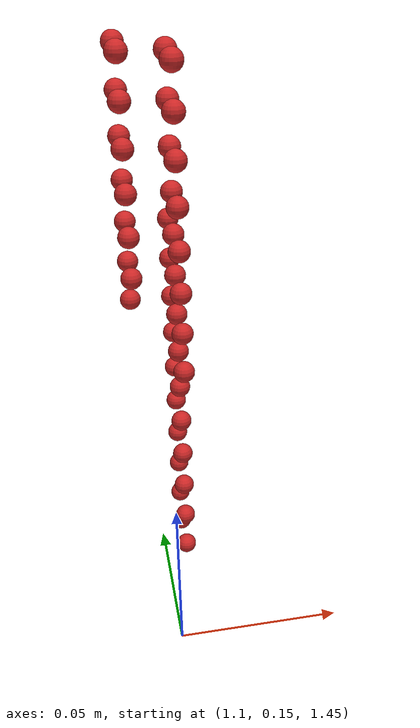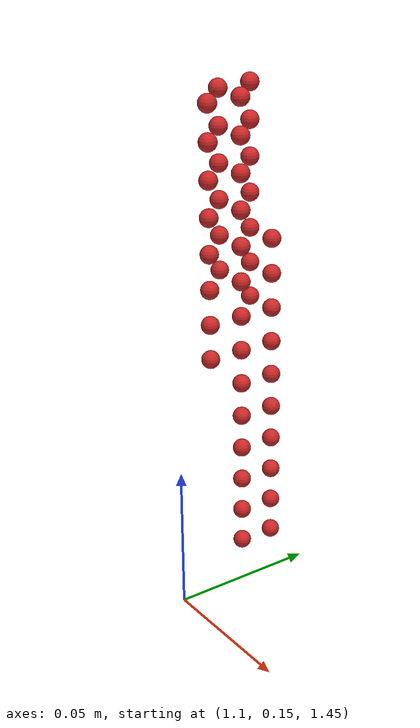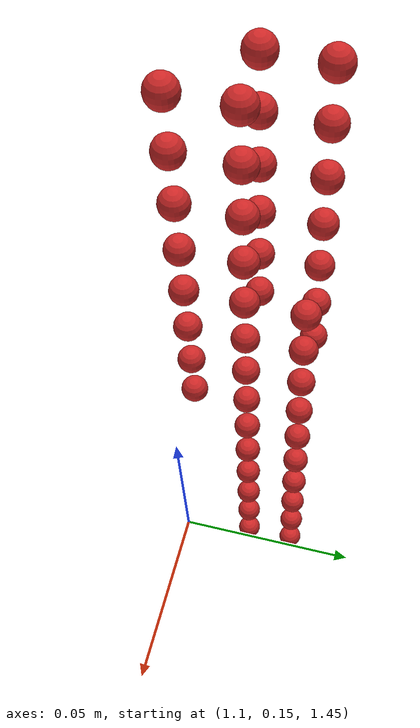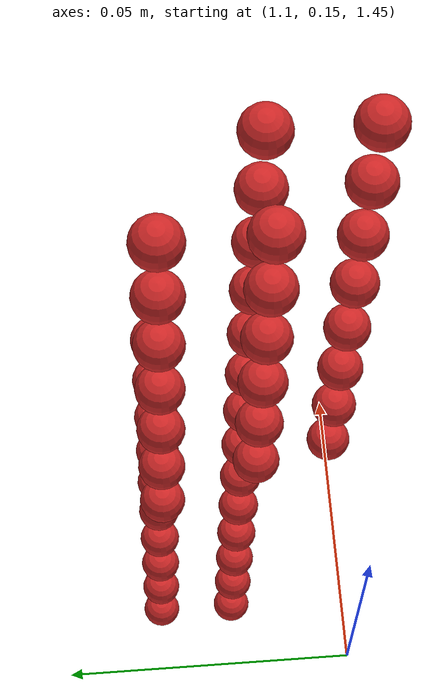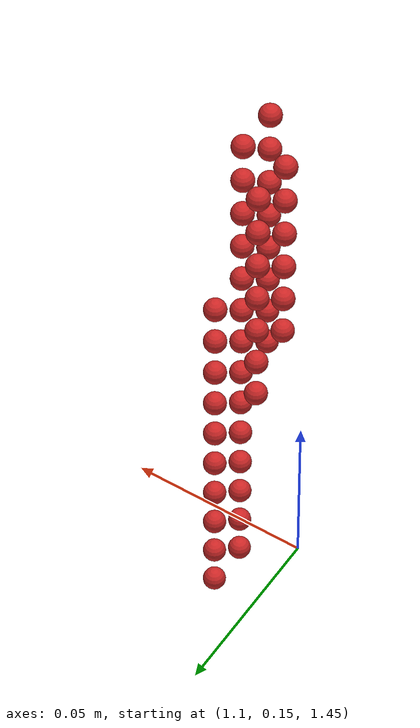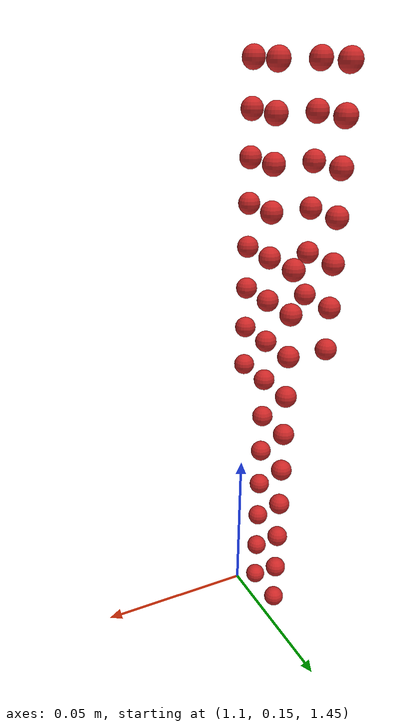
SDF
<sdf version="1.4">
 <world name="default">
  <model name="ground_plane">
   <static>1</static>
   <link name="link">
    <collision name="collision">
     <geometry><plane><normal>0 0 1</normal><size>100 100</size></plane></geometry>
     <surface><friction><ode><mu>100</mu><mu2>50</mu2></ode></friction></surface>
    </collision>
    <visual name="visual">
     <cast_shadows>0</cast_shadows>
     <geometry><plane><normal>0 0 1</normal><size>100 100</size></plane></geometry>
     <material>
      <script><uri>file://media/materials/scripts/gazebo.material</uri><name>Gazebo/Grey</name></script>
     </material>
    </visual>
    <velocity_decay><linear>0</linear><angular>0</angular></velocity_decay>
   </link>
  </model>
  <model name="sphere10">
   <pose>0.558545 0.091517 0.734885 0 0 0</pose>
   <link name="link">
    <pose>0.546545 0.079517 0.734885 0 0 0</pose>
    <inertial>
     <mass>0.001</mass>
     <inertia>
      <ixx>0.004</ixx>
      <ixy>0.000000</ixy>
      <ixz>0.000000</ixz>
      <iyy>0.004</iyy>
      <iyz>0.000000</iyz>
      <izz>0.004</izz>
     </inertia>
    </inertial>
    <collision name="collision">
     <surface>
      <contact><ode><kp>10000000000.000000</kp><kd>1</kd></ode></contact>
      <friction><ode><mu>0.01</mu><mu2>0.01</mu2></ode></friction>
     </surface>
     <geometry><sphere><radius>0.003</radius></sphere></geometry>
    </collision>
    <visual name="visual">
     <geometry><sphere><radius>0.003</radius></sphere></geometry>
     <material>
      <script><uri>file://media/materials/scripts/gazebo.material</uri><name>Gazebo/Red</name></script>
     </material>
    </visual>
   </link>
  </model>
  <model name="sphere14">
   <pose>0.558545 0.097517 0.734885 0 0 0</pose>
   <link name="link">
    <pose>0.546545 0.085517 0.734885 0 0 0</pose>
    <inertial>
     <mass>0.001</mass>
     <inertia>
      <ixx>0.004</ixx>
      <ixy>0.000000</ixy>
      <ixz>0.000000</ixz>
      <iyy>0.004</iyy>
      <iyz>0.000000</iyz>
      <izz>0.004</izz>
     </inertia>
    </inertial>
    <collision name="collision">
     <surface>
      <contact><ode><kp>10000000000.000000</kp><kd>1</kd></ode></contact>
      <friction><ode><mu>0.01</mu><mu2>0.01</mu2></ode></friction>
     </surface>
     <geometry><sphere><radius>0.003</radius></sphere></geometry>
    </collision>
    <visual name="visual">
     <geometry><sphere><radius>0.003</radius></sphere></geometry>
     <material>
      <script><uri>file://media/materials/scripts/gazebo.material</uri><name>Gazebo/Red</name></script>
     </material>
    </visual>
   </link>
  </model>
  <model name="sphere26">
   <pose>0.558545 0.091517 0.740885 0 0 0</pose>
   <link name="link">
    <pose>0.546545 0.079517 0.740885 0 0 0</pose>
    <inertial>
     <mass>0.001</mass>
     <inertia>
      <ixx>0.004</ixx>
      <ixy>0.000000</ixy>
      <ixz>0.000000</ixz>
      <iyy>0.004</iyy>
      <iyz>0.000000</iyz>
      <izz>0.004</izz>
     </inertia>
    </inertial>
    <collision name="collision">
     <surface>
      <contact><ode><kp>10000000000.000000</kp><kd>1</kd></ode></contact>
      <friction><ode><mu>0.01</mu><mu2>0.01</mu2></ode></friction>
     </surface>
     <geometry><sphere><radius>0.003</radius></sphere></geometry>
    </collision>
    <visual name="visual">
     <geometry><sphere><radius>0.003</radius></sphere></geometry>
     <material>
      <script><uri>file://media/materials/scripts/gazebo.material</uri><name>Gazebo/Red</name></script>
     </material>
    </visual>
   </link>
  </model>
  <model name="sphere30">
   <pose>0.558545 0.097517 0.740885 0 0 0</pose>
   <link name="link">
    <pose>0.546545 0.085517 0.740885 0 0 0</pose>
    <inertial>
     <mass>0.001</mass>
     <inertia>
      <ixx>0.004</ixx>
      <ixy>0.000000</ixy>
      <ixz>0.000000</ixz>
      <iyy>0.004</iyy>
      <iyz>0.000000</iyz>
      <izz>0.004</izz>
     </inertia>
    </inertial>
    <collision name="collision">
     <surface>
      <contact><ode><kp>10000000000.000000</kp><kd>1</kd></ode></contact>
      <friction><ode><mu>0.01</mu><mu2>0.01</mu2></ode></friction>
     </surface>
     <geometry><sphere><radius>0.003</radius></sphere></geometry>
    </collision>
    <visual name="visual">
     <geometry><sphere><radius>0.003</radius></sphere></geometry>
     <material>
      <script><uri>file://media/materials/scripts/gazebo.material</uri><name>Gazebo/Red</name></script>
     </material>
    </visual>
   </link>
  </model>
  <model name="sphere42">
   <pose>0.558545 0.091517 0.746885 0 0 0</pose>
   <link name="link">
    <pose>0.546545 0.079517 0.746885 0 0 0</pose>
    <inertial>
     <mass>0.001</mass>
     <inertia>
      <ixx>0.004</ixx>
      <ixy>0.000000</ixy>
      <ixz>0.000000</ixz>
      <iyy>0.004</iyy>
      <iyz>0.000000</iyz>
      <izz>0.004</izz>
     </inertia>
    </inertial>
    <collision name="collision">
     <surface>
      <contact><ode><kp>10000000000.000000</kp><kd>1</kd></ode></contact>
      <friction><ode><mu>0.01</mu><mu2>0.01</mu2></ode></friction>
     </surface>
     <geometry><sphere><radius>0.003</radius></sphere></geometry>
    </collision>
    <visual name="visual">
     <geometry><sphere><radius>0.003</radius></sphere></geometry>
     <material>
      <script><uri>file://media/materials/scripts/gazebo.material</uri><name>Gazebo/Red</name></script>
     </material>
    </visual>
   </link>
  </model>
  <model name="sphere46">
   <pose>0.558545 0.097517 0.746885 0 0 0</pose>
   <link name="link">
    <pose>0.546545 0.085517 0.746885 0 0 0</pose>
    <inertial>
     <mass>0.001</mass>
     <inertia>
      <ixx>0.004</ixx>
      <ixy>0.000000</ixy>
      <ixz>0.000000</ixz>
      <iyy>0.004</iyy>
      <iyz>0.000000</iyz>
      <izz>0.004</izz>
     </inertia>
    </inertial>
    <collision name="collision">
     <surface>
      <contact><ode><kp>10000000000.000000</kp><kd>1</kd></ode></contact>
      <friction><ode><mu>0.01</mu><mu2>0.01</mu2></ode></friction>
     </surface>
     <geometry><sphere><radius>0.003</radius></sphere></geometry>
    </collision>
    <visual name="visual">
     <geometry><sphere><radius>0.003</radius></sphere></geometry>
     <material>
      <script><uri>file://media/materials/scripts/gazebo.material</uri><name>Gazebo/Red</name></script>
     </material>
    </visual>
   </link>
  </model>
  <model name="sphere58">
   <pose>0.558545 0.091517 0.752885 0 0 0</pose>
   <link name="link">
    <pose>0.546545 0.079517 0.752885 0 0 0</pose>
    <inertial>
     <mass>0.001</mass>
     <inertia>
      <ixx>0.004</ixx>
      <ixy>0.000000</ixy>
      <ixz>0.000000</ixz>
      <iyy>0.004</iyy>
      <iyz>0.000000</iyz>
      <izz>0.004</izz>
     </inertia>
    </inertial>
    <collision name="collision">
     <surface>
      <contact><ode><kp>10000000000.000000</kp><kd>1</kd></ode></contact>
      <friction><ode><mu>0.01</mu><mu2>0.01</mu2></ode></friction>
     </surface>
     <geometry><sphere><radius>0.003</radius></sphere></geometry>
    </collision>
    <visual name="visual">
     <geometry><sphere><radius>0.003</radius></sphere></geometry>
     <material>
      <script><uri>file://media/materials/scripts/gazebo.material</uri><name>Gazebo/Red</name></script>
     </material>
    </visual>
   </link>
  </model>
  <model name="sphere62">
   <pose>0.558545 0.097517 0.752885 0 0 0</pose>
   <link name="link">
    <pose>0.546545 0.085517 0.752885 0 0 0</pose>
    <inertial>
     <mass>0.001</mass>
     <inertia>
      <ixx>0.004</ixx>
      <ixy>0.000000</ixy>
      <ixz>0.000000</ixz>
      <iyy>0.004</iyy>
      <iyz>0.000000</iyz>
      <izz>0.004</izz>
     </inertia>
    </inertial>
    <collision name="collision">
     <surface>
      <contact><ode><kp>10000000000.000000</kp><kd>1</kd></ode></contact>
      <friction><ode><mu>0.01</mu><mu2>0.01</mu2></ode></friction>
     </surface>
     <geometry><sphere><radius>0.003</radius></sphere></geometry>
    </collision>
    <visual name="visual">
     <geometry><sphere><radius>0.003</radius></sphere></geometry>
     <material>
      <script><uri>file://media/materials/scripts/gazebo.material</uri><name>Gazebo/Red</name></script>
     </material>
    </visual>
   </link>
  </model>
  <model name="sphere74">
   <pose>0.558545 0.091517 0.758885 0 0 0</pose>
   <link name="link">
    <pose>0.546545 0.079517 0.758885 0 0 0</pose>
    <inertial>
     <mass>0.001</mass>
     <inertia>
      <ixx>0.004</ixx>
      <ixy>0.000000</ixy>
      <ixz>0.000000</ixz>
      <iyy>0.004</iyy>
      <iyz>0.000000</iyz>
      <izz>0.004</izz>
     </inertia>
    </inertial>
    <collision name="collision">
     <surface>
      <contact><ode><kp>10000000000.000000</kp><kd>1</kd></ode></contact>
      <friction><ode><mu>0.01</mu><mu2>0.01</mu2></ode></friction>
     </surface>
     <geometry><sphere><radius>0.003</radius></sphere></geometry>
    </collision>
    <visual name="visual">
     <geometry><sphere><radius>0.003</radius></sphere></geometry>
     <material>
      <script><uri>file://media/materials/scripts/gazebo.material</uri><name>Gazebo/Red</name></script>
     </material>
    </visual>
   </link>
  </model>
  <model name="sphere78">
   <pose>0.558545 0.097517 0.758885 0 0 0</pose>
   <link name="link">
    <pose>0.546545 0.085517 0.758885 0 0 0</pose>
    <inertial>
     <mass>0.001</mass>
     <inertia>
      <ixx>0.004</ixx>
      <ixy>0.000000</ixy>
      <ixz>0.000000</ixz>
      <iyy>0.004</iyy>
      <iyz>0.000000</iyz>
      <izz>0.004</izz>
     </inertia>
    </inertial>
    <collision name="collision">
     <surface>
      <contact><ode><kp>10000000000.000000</kp><kd>1</kd></ode></contact>
      <friction><ode><mu>0.01</mu><mu2>0.01</mu2></ode></friction>
     </surface>
     <geometry><sphere><radius>0.003</radius></sphere></geometry>
    </collision>
    <visual name="visual">
     <geometry><sphere><radius>0.003</radius></sphere></geometry>
     <material>
      <script><uri>file://media/materials/scripts/gazebo.material</uri><name>Gazebo/Red</name></script>
     </material>
    </visual>
   </link>
  </model>
  <model name="sphere90">
   <pose>0.558545 0.091517 0.764885 0 0 0</pose>
   <link name="link">
    <pose>0.546545 0.079517 0.764885 0 0 0</pose>
    <inertial>
     <mass>0.001</mass>
     <inertia>
      <ixx>0.004</ixx>
      <ixy>0.000000</ixy>
      <ixz>0.000000</ixz>
      <iyy>0.004</iyy>
      <iyz>0.000000</iyz>
      <izz>0.004</izz>
     </inertia>
    </inertial>
    <collision name="collision">
     <surface>
      <contact><ode><kp>10000000000.000000</kp><kd>1</kd></ode></contact>
      <friction><ode><mu>0.01</mu><mu2>0.01</mu2></ode></friction>
     </surface>
     <geometry><sphere><radius>0.003</radius></sphere></geometry>
    </collision>
    <visual name="visual">
     <geometry><sphere><radius>0.003</radius></sphere></geometry>
     <material>
      <script><uri>file://media/materials/scripts/gazebo.material</uri><name>Gazebo/Red</name></script>
     </material>
    </visual>
   </link>
  </model>
  <model name="sphere94">
   <pose>0.558545 0.097517 0.764885 0 0 0</pose>
   <link name="link">
    <pose>0.546545 0.085517 0.764885 0 0 0</pose>
    <inertial>
     <mass>0.001</mass>
     <inertia>
      <ixx>0.004</ixx>
      <ixy>0.000000</ixy>
      <ixz>0.000000</ixz>
      <iyy>0.004</iyy>
      <iyz>0.000000</iyz>
      <izz>0.004</izz>
     </inertia>
    </inertial>
    <collision name="collision">
     <surface>
      <contact><ode><kp>10000000000.000000</kp><kd>1</kd></ode></contact>
      <friction><ode><mu>0.01</mu><mu2>0.01</mu2></ode></friction>
     </surface>
     <geometry><sphere><radius>0.003</radius></sphere></geometry>
    </collision>
    <visual name="visual">
     <geometry><sphere><radius>0.003</radius></sphere></geometry>
     <material>
      <script><uri>file://media/materials/scripts/gazebo.material</uri><name>Gazebo/Red</name></script>
     </material>
    </visual>
   </link>
  </model>
  <model name="sphere102">
   <pose>0.558545 0.085517 0.770885 0 0 0</pose>
   <link name="link">
    <pose>0.546545 0.073517 0.770885 0 0 0</pose>
    <inertial>
     <mass>0.001</mass>
     <inertia>
      <ixx>0.004</ixx>
      <ixy>0.000000</ixy>
      <ixz>0.000000</ixz>
      <iyy>0.004</iyy>
      <iyz>0.000000</iyz>
      <izz>0.004</izz>
     </inertia>
    </inertial>
    <collision name="collision">
     <surface>
      <contact><ode><kp>10000000000.000000</kp><kd>1</kd></ode></contact>
      <friction><ode><mu>0.01</mu><mu2>0.01</mu2></ode></friction>
     </surface>
     <geometry><sphere><radius>0.003</radius></sphere></geometry>
    </collision>
    <visual name="visual">
     <geometry><sphere><radius>0.003</radius></sphere></geometry>
     <material>
      <script><uri>file://media/materials/scripts/gazebo.material</uri><name>Gazebo/Red</name></script>
     </material>
    </visual>
   </link>
  </model>
  <model name="sphere106">
   <pose>0.558545 0.091517 0.770885 0 0 0</pose>
   <link name="link">
    <pose>0.546545 0.079517 0.770885 0 0 0</pose>
    <inertial>
     <mass>0.001</mass>
     <inertia>
      <ixx>0.004</ixx>
      <ixy>0.000000</ixy>
      <ixz>0.000000</ixz>
      <iyy>0.004</iyy>
      <iyz>0.000000</iyz>
      <izz>0.004</izz>
     </inertia>
    </inertial>
    <collision name="collision">
     <surface>
      <contact><ode><kp>10000000000.000000</kp><kd>1</kd></ode></contact>
      <friction><ode><mu>0.01</mu><mu2>0.01</mu2></ode></friction>
     </surface>
     <geometry><sphere><radius>0.003</radius></sphere></geometry>
    </collision>
    <visual name="visual">
     <geometry><sphere><radius>0.003</radius></sphere></geometry>
     <material>
      <script><uri>file://media/materials/scripts/gazebo.material</uri><name>Gazebo/Red</name></script>
     </material>
    </visual>
   </link>
  </model>
  <model name="sphere110">
   <pose>0.558545 0.097517 0.770885 0 0 0</pose>
   <link name="link">
    <pose>0.546545 0.085517 0.770885 0 0 0</pose>
    <inertial>
     <mass>0.001</mass>
     <inertia>
      <ixx>0.004</ixx>
      <ixy>0.000000</ixy>
      <ixz>0.000000</ixz>
      <iyy>0.004</iyy>
      <iyz>0.000000</iyz>
      <izz>0.004</izz>
     </inertia>
    </inertial>
    <collision name="collision">
     <surface>
      <contact><ode><kp>10000000000.000000</kp><kd>1</kd></ode></contact>
      <friction><ode><mu>0.01</mu><mu2>0.01</mu2></ode></friction>
     </surface>
     <geometry><sphere><radius>0.003</radius></sphere></geometry>
    </collision>
    <visual name="visual">
     <geometry><sphere><radius>0.003</radius></sphere></geometry>
     <material>
      <script><uri>file://media/materials/scripts/gazebo.material</uri><name>Gazebo/Red</name></script>
     </material>
    </visual>
   </link>
  </model>
  <model name="sphere118">
   <pose>0.558545 0.085517 0.776885 0 0 0</pose>
   <link name="link">
    <pose>0.546545 0.073517 0.776885 0 0 0</pose>
    <inertial>
     <mass>0.001</mass>
     <inertia>
      <ixx>0.004</ixx>
      <ixy>0.000000</ixy>
      <ixz>0.000000</ixz>
      <iyy>0.004</iyy>
      <iyz>0.000000</iyz>
      <izz>0.004</izz>
     </inertia>
    </inertial>
    <collision name="collision">
     <surface>
      <contact><ode><kp>10000000000.000000</kp><kd>1</kd></ode></contact>
      <friction><ode><mu>0.01</mu><mu2>0.01</mu2></ode></friction>
     </surface>
     <geometry><sphere><radius>0.003</radius></sphere></geometry>
    </collision>
    <visual name="visual">
     <geometry><sphere><radius>0.003</radius></sphere></geometry>
     <material>
      <script><uri>file://media/materials/scripts/gazebo.material</uri><name>Gazebo/Red</name></script>
     </material>
    </visual>
   </link>
  </model>
  <model name="sphere122">
   <pose>0.558545 0.091517 0.776885 0 0 0</pose>
   <link name="link">
    <pose>0.546545 0.079517 0.776885 0 0 0</pose>
    <inertial>
     <mass>0.001</mass>
     <inertia>
      <ixx>0.004</ixx>
      <ixy>0.000000</ixy>
      <ixz>0.000000</ixz>
      <iyy>0.004</iyy>
      <iyz>0.000000</iyz>
      <izz>0.004</izz>
     </inertia>
    </inertial>
    <collision name="collision">
     <surface>
      <contact><ode><kp>10000000000.000000</kp><kd>1</kd></ode></contact>
      <friction><ode><mu>0.01</mu><mu2>0.01</mu2></ode></friction>
     </surface>
     <geometry><sphere><radius>0.003</radius></sphere></geometry>
    </collision>
    <visual name="visual">
     <geometry><sphere><radius>0.003</radius></sphere></geometry>
     <material>
      <script><uri>file://media/materials/scripts/gazebo.material</uri><name>Gazebo/Red</name></script>
     </material>
    </visual>
   </link>
  </model>
  <model name="sphere125">
   <pose>0.552545 0.097517 0.776885 0 0 0</pose>
   <link name="link">
    <pose>0.540545 0.085517 0.776885 0 0 0</pose>
    <inertial>
     <mass>0.001</mass>
     <inertia>
      <ixx>0.004</ixx>
      <ixy>0.000000</ixy>
      <ixz>0.000000</ixz>
      <iyy>0.004</iyy>
      <iyz>0.000000</iyz>
      <izz>0.004</izz>
     </inertia>
    </inertial>
    <collision name="collision">
     <surface>
      <contact><ode><kp>10000000000.000000</kp><kd>1</kd></ode></contact>
      <friction><ode><mu>0.01</mu><mu2>0.01</mu2></ode></friction>
     </surface>
     <geometry><sphere><radius>0.003</radius></sphere></geometry>
    </collision>
    <visual name="visual">
     <geometry><sphere><radius>0.003</radius></sphere></geometry>
     <material>
      <script><uri>file://media/materials/scripts/gazebo.material</uri><name>Gazebo/Red</name></script>
     </material>
    </visual>
   </link>
  </model>
  <model name="sphere126">
   <pose>0.558545 0.097517 0.776885 0 0 0</pose>
   <link name="link">
    <pose>0.546545 0.085517 0.776885 0 0 0</pose>
    <inertial>
     <mass>0.001</mass>
     <inertia>
      <ixx>0.004</ixx>
      <ixy>0.000000</ixy>
      <ixz>0.000000</ixz>
      <iyy>0.004</iyy>
      <iyz>0.000000</iyz>
      <izz>0.004</izz>
     </inertia>
    </inertial>
    <collision name="collision">
     <surface>
      <contact><ode><kp>10000000000.000000</kp><kd>1</kd></ode></contact>
      <friction><ode><mu>0.01</mu><mu2>0.01</mu2></ode></friction>
     </surface>
     <geometry><sphere><radius>0.003</radius></sphere></geometry>
    </collision>
    <visual name="visual">
     <geometry><sphere><radius>0.003</radius></sphere></geometry>
     <material>
      <script><uri>file://media/materials/scripts/gazebo.material</uri><name>Gazebo/Red</name></script>
     </material>
    </visual>
   </link>
  </model>
  <model name="sphere134">
   <pose>0.558545 0.085517 0.782885 0 0 0</pose>
   <link name="link">
    <pose>0.546545 0.073517 0.782885 0 0 0</pose>
    <inertial>
     <mass>0.001</mass>
     <inertia>
      <ixx>0.004</ixx>
      <ixy>0.000000</ixy>
      <ixz>0.000000</ixz>
      <iyy>0.004</iyy>
      <iyz>0.000000</iyz>
      <izz>0.004</izz>
     </inertia>
    </inertial>
    <collision name="collision">
     <surface>
      <contact><ode><kp>10000000000.000000</kp><kd>1</kd></ode></contact>
      <friction><ode><mu>0.01</mu><mu2>0.01</mu2></ode></friction>
     </surface>
     <geometry><sphere><radius>0.003</radius></sphere></geometry>
    </collision>
    <visual name="visual">
     <geometry><sphere><radius>0.003</radius></sphere></geometry>
     <material>
      <script><uri>file://media/materials/scripts/gazebo.material</uri><name>Gazebo/Red</name></script>
     </material>
    </visual>
   </link>
  </model>
  <model name="sphere137">
   <pose>0.552545 0.091517 0.782885 0 0 0</pose>
   <link name="link">
    <pose>0.540545 0.079517 0.782885 0 0 0</pose>
    <inertial>
     <mass>0.001</mass>
     <inertia>
      <ixx>0.004</ixx>
      <ixy>0.000000</ixy>
      <ixz>0.000000</ixz>
      <iyy>0.004</iyy>
      <iyz>0.000000</iyz>
      <izz>0.004</izz>
     </inertia>
    </inertial>
    <collision name="collision">
     <surface>
      <contact><ode><kp>10000000000.000000</kp><kd>1</kd></ode></contact>
      <friction><ode><mu>0.01</mu><mu2>0.01</mu2></ode></friction>
     </surface>
     <geometry><sphere><radius>0.003</radius></sphere></geometry>
    </collision>
    <visual name="visual">
     <geometry><sphere><radius>0.003</radius></sphere></geometry>
     <material>
      <script><uri>file://media/materials/scripts/gazebo.material</uri><name>Gazebo/Red</name></script>
     </material>
    </visual>
   </link>
  </model>
  <model name="sphere138">
   <pose>0.558545 0.091517 0.782885 0 0 0</pose>
   <link name="link">
    <pose>0.546545 0.079517 0.782885 0 0 0</pose>
    <inertial>
     <mass>0.001</mass>
     <inertia>
      <ixx>0.004</ixx>
      <ixy>0.000000</ixy>
      <ixz>0.000000</ixz>
      <iyy>0.004</iyy>
      <iyz>0.000000</iyz>
      <izz>0.004</izz>
     </inertia>
    </inertial>
    <collision name="collision">
     <surface>
      <contact><ode><kp>10000000000.000000</kp><kd>1</kd></ode></contact>
      <friction><ode><mu>0.01</mu><mu2>0.01</mu2></ode></friction>
     </surface>
     <geometry><sphere><radius>0.003</radius></sphere></geometry>
    </collision>
    <visual name="visual">
     <geometry><sphere><radius>0.003</radius></sphere></geometry>
     <material>
      <script><uri>file://media/materials/scripts/gazebo.material</uri><name>Gazebo/Red</name></script>
     </material>
    </visual>
   </link>
  </model>
  <model name="sphere141">
   <pose>0.552545 0.097517 0.782885 0 0 0</pose>
   <link name="link">
    <pose>0.540545 0.085517 0.782885 0 0 0</pose>
    <inertial>
     <mass>0.001</mass>
     <inertia>
      <ixx>0.004</ixx>
      <ixy>0.000000</ixy>
      <ixz>0.000000</ixz>
      <iyy>0.004</iyy>
      <iyz>0.000000</iyz>
      <izz>0.004</izz>
     </inertia>
    </inertial>
    <collision name="collision">
     <surface>
      <contact><ode><kp>10000000000.000000</kp><kd>1</kd></ode></contact>
      <friction><ode><mu>0.01</mu><mu2>0.01</mu2></ode></friction>
     </surface>
     <geometry><sphere><radius>0.003</radius></sphere></geometry>
    </collision>
    <visual name="visual">
     <geometry><sphere><radius>0.003</radius></sphere></geometry>
     <material>
      <script><uri>file://media/materials/scripts/gazebo.material</uri><name>Gazebo/Red</name></script>
     </material>
    </visual>
   </link>
  </model>
  <model name="sphere142">
   <pose>0.558545 0.097517 0.782885 0 0 0</pose>
   <link name="link">
    <pose>0.546545 0.085517 0.782885 0 0 0</pose>
    <inertial>
     <mass>0.001</mass>
     <inertia>
      <ixx>0.004</ixx>
      <ixy>0.000000</ixy>
      <ixz>0.000000</ixz>
      <iyy>0.004</iyy>
      <iyz>0.000000</iyz>
      <izz>0.004</izz>
     </inertia>
    </inertial>
    <collision name="collision">
     <surface>
      <contact><ode><kp>10000000000.000000</kp><kd>1</kd></ode></contact>
      <friction><ode><mu>0.01</mu><mu2>0.01</mu2></ode></friction>
     </surface>
     <geometry><sphere><radius>0.003</radius></sphere></geometry>
    </collision>
    <visual name="visual">
     <geometry><sphere><radius>0.003</radius></sphere></geometry>
     <material>
      <script><uri>file://media/materials/scripts/gazebo.material</uri><name>Gazebo/Red</name></script>
     </material>
    </visual>
   </link>
  </model>
  <model name="sphere150">
   <pose>0.558545 0.085517 0.788885 0 0 0</pose>
   <link name="link">
    <pose>0.546545 0.073517 0.788885 0 0 0</pose>
    <inertial>
     <mass>0.001</mass>
     <inertia>
      <ixx>0.004</ixx>
      <ixy>0.000000</ixy>
      <ixz>0.000000</ixz>
      <iyy>0.004</iyy>
      <iyz>0.000000</iyz>
      <izz>0.004</izz>
     </inertia>
    </inertial>
    <collision name="collision">
     <surface>
      <contact><ode><kp>10000000000.000000</kp><kd>1</kd></ode></contact>
      <friction><ode><mu>0.01</mu><mu2>0.01</mu2></ode></friction>
     </surface>
     <geometry><sphere><radius>0.003</radius></sphere></geometry>
    </collision>
    <visual name="visual">
     <geometry><sphere><radius>0.003</radius></sphere></geometry>
     <material>
      <script><uri>file://media/materials/scripts/gazebo.material</uri><name>Gazebo/Red</name></script>
     </material>
    </visual>
   </link>
  </model>
  <model name="sphere153">
   <pose>0.552545 0.091517 0.788885 0 0 0</pose>
   <link name="link">
    <pose>0.540545 0.079517 0.788885 0 0 0</pose>
    <inertial>
     <mass>0.001</mass>
     <inertia>
      <ixx>0.004</ixx>
      <ixy>0.000000</ixy>
      <ixz>0.000000</ixz>
      <iyy>0.004</iyy>
      <iyz>0.000000</iyz>
      <izz>0.004</izz>
     </inertia>
    </inertial>
    <collision name="collision">
     <surface>
      <contact><ode><kp>10000000000.000000</kp><kd>1</kd></ode></contact>
      <friction><ode><mu>0.01</mu><mu2>0.01</mu2></ode></friction>
     </surface>
     <geometry><sphere><radius>0.003</radius></sphere></geometry>
    </collision>
    <visual name="visual">
     <geometry><sphere><radius>0.003</radius></sphere></geometry>
     <material>
      <script><uri>file://media/materials/scripts/gazebo.material</uri><name>Gazebo/Red</name></script>
     </material>
    </visual>
   </link>
  </model>
  <model name="sphere154">
   <pose>0.558545 0.091517 0.788885 0 0 0</pose>
   <link name="link">
    <pose>0.546545 0.079517 0.788885 0 0 0</pose>
    <inertial>
     <mass>0.001</mass>
     <inertia>
      <ixx>0.004</ixx>
      <ixy>0.000000</ixy>
      <ixz>0.000000</ixz>
      <iyy>0.004</iyy>
      <iyz>0.000000</iyz>
      <izz>0.004</izz>
     </inertia>
    </inertial>
    <collision name="collision">
     <surface>
      <contact><ode><kp>10000000000.000000</kp><kd>1</kd></ode></contact>
      <friction><ode><mu>0.01</mu><mu2>0.01</mu2></ode></friction>
     </surface>
     <geometry><sphere><radius>0.003</radius></sphere></geometry>
    </collision>
    <visual name="visual">
     <geometry><sphere><radius>0.003</radius></sphere></geometry>
     <material>
      <script><uri>file://media/materials/scripts/gazebo.material</uri><name>Gazebo/Red</name></script>
     </material>
    </visual>
   </link>
  </model>
  <model name="sphere157">
   <pose>0.552545 0.097517 0.788885 0 0 0</pose>
   <link name="link">
    <pose>0.540545 0.085517 0.788885 0 0 0</pose>
    <inertial>
     <mass>0.001</mass>
     <inertia>
      <ixx>0.004</ixx>
      <ixy>0.000000</ixy>
      <ixz>0.000000</ixz>
      <iyy>0.004</iyy>
      <iyz>0.000000</iyz>
      <izz>0.004</izz>
     </inertia>
    </inertial>
    <collision name="collision">
     <surface>
      <contact><ode><kp>10000000000.000000</kp><kd>1</kd></ode></contact>
      <friction><ode><mu>0.01</mu><mu2>0.01</mu2></ode></friction>
     </surface>
     <geometry><sphere><radius>0.003</radius></sphere></geometry>
    </collision>
    <visual name="visual">
     <geometry><sphere><radius>0.003</radius></sphere></geometry>
     <material>
      <script><uri>file://media/materials/scripts/gazebo.material</uri><name>Gazebo/Red</name></script>
     </material>
    </visual>
   </link>
  </model>
  <model name="sphere158">
   <pose>0.558545 0.097517 0.788885 0 0 0</pose>
   <link name="link">
    <pose>0.546545 0.085517 0.788885 0 0 0</pose>
    <inertial>
     <mass>0.001</mass>
     <inertia>
      <ixx>0.004</ixx>
      <ixy>0.000000</ixy>
      <ixz>0.000000</ixz>
      <iyy>0.004</iyy>
      <iyz>0.000000</iyz>
      <izz>0.004</izz>
     </inertia>
    </inertial>
    <collision name="collision">
     <surface>
      <contact><ode><kp>10000000000.000000</kp><kd>1</kd></ode></contact>
      <friction><ode><mu>0.01</mu><mu2>0.01</mu2></ode></friction>
     </surface>
     <geometry><sphere><radius>0.003</radius></sphere></geometry>
    </collision>
    <visual name="visual">
     <geometry><sphere><radius>0.003</radius></sphere></geometry>
     <material>
      <script><uri>file://media/materials/scripts/gazebo.material</uri><name>Gazebo/Red</name></script>
     </material>
    </visual>
   </link>
  </model>
  <model name="sphere166">
   <pose>0.558545 0.085517 0.794885 0 0 0</pose>
   <link name="link">
    <pose>0.546545 0.073517 0.794885 0 0 0</pose>
    <inertial>
     <mass>0.001</mass>
     <inertia>
      <ixx>0.004</ixx>
      <ixy>0.000000</ixy>
      <ixz>0.000000</ixz>
      <iyy>0.004</iyy>
      <iyz>0.000000</iyz>
      <izz>0.004</izz>
     </inertia>
    </inertial>
    <collision name="collision">
     <surface>
      <contact><ode><kp>10000000000.000000</kp><kd>1</kd></ode></contact>
      <friction><ode><mu>0.01</mu><mu2>0.01</mu2></ode></friction>
     </surface>
     <geometry><sphere><radius>0.003</radius></sphere></geometry>
    </collision>
    <visual name="visual">
     <geometry><sphere><radius>0.003</radius></sphere></geometry>
     <material>
      <script><uri>file://media/materials/scripts/gazebo.material</uri><name>Gazebo/Red</name></script>
     </material>
    </visual>
   </link>
  </model>
  <model name="sphere169">
   <pose>0.552545 0.091517 0.794885 0 0 0</pose>
   <link name="link">
    <pose>0.540545 0.079517 0.794885 0 0 0</pose>
    <inertial>
     <mass>0.001</mass>
     <inertia>
      <ixx>0.004</ixx>
      <ixy>0.000000</ixy>
      <ixz>0.000000</ixz>
      <iyy>0.004</iyy>
      <iyz>0.000000</iyz>
      <izz>0.004</izz>
     </inertia>
    </inertial>
    <collision name="collision">
     <surface>
      <contact><ode><kp>10000000000.000000</kp><kd>1</kd></ode></contact>
      <friction><ode><mu>0.01</mu><mu2>0.01</mu2></ode></friction>
     </surface>
     <geometry><sphere><radius>0.003</radius></sphere></geometry>
    </collision>
    <visual name="visual">
     <geometry><sphere><radius>0.003</radius></sphere></geometry>
     <material>
      <script><uri>file://media/materials/scripts/gazebo.material</uri><name>Gazebo/Red</name></script>
     </material>
    </visual>
   </link>
  </model>
  <model name="sphere170">
   <pose>0.558545 0.091517 0.794885 0 0 0</pose>
   <link name="link">
    <pose>0.546545 0.079517 0.794885 0 0 0</pose>
    <inertial>
     <mass>0.001</mass>
     <inertia>
      <ixx>0.004</ixx>
      <ixy>0.000000</ixy>
      <ixz>0.000000</ixz>
      <iyy>0.004</iyy>
      <iyz>0.000000</iyz>
      <izz>0.004</izz>
     </inertia>
    </inertial>
    <collision name="collision">
     <surface>
      <contact><ode><kp>10000000000.000000</kp><kd>1</kd></ode></contact>
      <friction><ode><mu>0.01</mu><mu2>0.01</mu2></ode></friction>
     </surface>
     <geometry><sphere><radius>0.003</radius></sphere></geometry>
    </collision>
    <visual name="visual">
     <geometry><sphere><radius>0.003</radius></sphere></geometry>
     <material>
      <script><uri>file://media/materials/scripts/gazebo.material</uri><name>Gazebo/Red</name></script>
     </material>
    </visual>
   </link>
  </model>
  <model name="sphere173">
   <pose>0.552545 0.097517 0.794885 0 0 0</pose>
   <link name="link">
    <pose>0.540545 0.085517 0.794885 0 0 0</pose>
    <inertial>
     <mass>0.001</mass>
     <inertia>
      <ixx>0.004</ixx>
      <ixy>0.000000</ixy>
      <ixz>0.000000</ixz>
      <iyy>0.004</iyy>
      <iyz>0.000000</iyz>
      <izz>0.004</izz>
     </inertia>
    </inertial>
    <collision name="collision">
     <surface>
      <contact><ode><kp>10000000000.000000</kp><kd>1</kd></ode></contact>
      <friction><ode><mu>0.01</mu><mu2>0.01</mu2></ode></friction>
     </surface>
     <geometry><sphere><radius>0.003</radius></sphere></geometry>
    </collision>
    <visual name="visual">
     <geometry><sphere><radius>0.003</radius></sphere></geometry>
     <material>
      <script><uri>file://media/materials/scripts/gazebo.material</uri><name>Gazebo/Red</name></script>
     </material>
    </visual>
   </link>
  </model>
  <model name="sphere182">
   <pose>0.558545 0.085517 0.800885 0 0 0</pose>
   <link name="link">
    <pose>0.546545 0.073517 0.800885 0 0 0</pose>
    <inertial>
     <mass>0.001</mass>
     <inertia>
      <ixx>0.004</ixx>
      <ixy>0.000000</ixy>
      <ixz>0.000000</ixz>
      <iyy>0.004</iyy>
      <iyz>0.000000</iyz>
      <izz>0.004</izz>
     </inertia>
    </inertial>
    <collision name="collision">
     <surface>
      <contact><ode><kp>10000000000.000000</kp><kd>1</kd></ode></contact>
      <friction><ode><mu>0.01</mu><mu2>0.01</mu2></ode></friction>
     </surface>
     <geometry><sphere><radius>0.003</radius></sphere></geometry>
    </collision>
    <visual name="visual">
     <geometry><sphere><radius>0.003</radius></sphere></geometry>
     <material>
      <script><uri>file://media/materials/scripts/gazebo.material</uri><name>Gazebo/Red</name></script>
     </material>
    </visual>
   </link>
  </model>
  <model name="sphere185">
   <pose>0.552545 0.091517 0.800885 0 0 0</pose>
   <link name="link">
    <pose>0.540545 0.079517 0.800885 0 0 0</pose>
    <inertial>
     <mass>0.001</mass>
     <inertia>
      <ixx>0.004</ixx>
      <ixy>0.000000</ixy>
      <ixz>0.000000</ixz>
      <iyy>0.004</iyy>
      <iyz>0.000000</iyz>
      <izz>0.004</izz>
     </inertia>
    </inertial>
    <collision name="collision">
     <surface>
      <contact><ode><kp>10000000000.000000</kp><kd>1</kd></ode></contact>
      <friction><ode><mu>0.01</mu><mu2>0.01</mu2></ode></friction>
     </surface>
     <geometry><sphere><radius>0.003</radius></sphere></geometry>
    </collision>
    <visual name="visual">
     <geometry><sphere><radius>0.003</radius></sphere></geometry>
     <material>
      <script><uri>file://media/materials/scripts/gazebo.material</uri><name>Gazebo/Red</name></script>
     </material>
    </visual>
   </link>
  </model>
  <model name="sphere186">
   <pose>0.558545 0.091517 0.800885 0 0 0</pose>
   <link name="link">
    <pose>0.546545 0.079517 0.800885 0 0 0</pose>
    <inertial>
     <mass>0.001</mass>
     <inertia>
      <ixx>0.004</ixx>
      <ixy>0.000000</ixy>
      <ixz>0.000000</ixz>
      <iyy>0.004</iyy>
      <iyz>0.000000</iyz>
      <izz>0.004</izz>
     </inertia>
    </inertial>
    <collision name="collision">
     <surface>
      <contact><ode><kp>10000000000.000000</kp><kd>1</kd></ode></contact>
      <friction><ode><mu>0.01</mu><mu2>0.01</mu2></ode></friction>
     </surface>
     <geometry><sphere><radius>0.003</radius></sphere></geometry>
    </collision>
    <visual name="visual">
     <geometry><sphere><radius>0.003</radius></sphere></geometry>
     <material>
      <script><uri>file://media/materials/scripts/gazebo.material</uri><name>Gazebo/Red</name></script>
     </material>
    </visual>
   </link>
  </model>
  <model name="sphere189">
   <pose>0.552545 0.097517 0.800885 0 0 0</pose>
   <link name="link">
    <pose>0.540545 0.085517 0.800885 0 0 0</pose>
    <inertial>
     <mass>0.001</mass>
     <inertia>
      <ixx>0.004</ixx>
      <ixy>0.000000</ixy>
      <ixz>0.000000</ixz>
      <iyy>0.004</iyy>
      <iyz>0.000000</iyz>
      <izz>0.004</izz>
     </inertia>
    </inertial>
    <collision name="collision">
     <surface>
      <contact><ode><kp>10000000000.000000</kp><kd>1</kd></ode></contact>
      <friction><ode><mu>0.01</mu><mu2>0.01</mu2></ode></friction>
     </surface>
     <geometry><sphere><radius>0.003</radius></sphere></geometry>
    </collision>
    <visual name="visual">
     <geometry><sphere><radius>0.003</radius></sphere></geometry>
     <material>
      <script><uri>file://media/materials/scripts/gazebo.material</uri><name>Gazebo/Red</name></script>
     </material>
    </visual>
   </link>
  </model>
  <model name="sphere198">
   <pose>0.558545 0.085517 0.806885 0 0 0</pose>
   <link name="link">
    <pose>0.546545 0.073517 0.806885 0 0 0</pose>
    <inertial>
     <mass>0.001</mass>
     <inertia>
      <ixx>0.004</ixx>
      <ixy>0.000000</ixy>
      <ixz>0.000000</ixz>
      <iyy>0.004</iyy>
      <iyz>0.000000</iyz>
      <izz>0.004</izz>
     </inertia>
    </inertial>
    <collision name="collision">
     <surface>
      <contact><ode><kp>10000000000.000000</kp><kd>1</kd></ode></contact>
      <friction><ode><mu>0.01</mu><mu2>0.01</mu2></ode></friction>
     </surface>
     <geometry><sphere><radius>0.003</radius></sphere></geometry>
    </collision>
    <visual name="visual">
     <geometry><sphere><radius>0.003</radius></sphere></geometry>
     <material>
      <script><uri>file://media/materials/scripts/gazebo.material</uri><name>Gazebo/Red</name></script>
     </material>
    </visual>
   </link>
  </model>
  <model name="sphere201">
   <pose>0.552545 0.091517 0.806885 0 0 0</pose>
   <link name="link">
    <pose>0.540545 0.079517 0.806885 0 0 0</pose>
    <inertial>
     <mass>0.001</mass>
     <inertia>
      <ixx>0.004</ixx>
      <ixy>0.000000</ixy>
      <ixz>0.000000</ixz>
      <iyy>0.004</iyy>
      <iyz>0.000000</iyz>
      <izz>0.004</izz>
     </inertia>
    </inertial>
    <collision name="collision">
     <surface>
      <contact><ode><kp>10000000000.000000</kp><kd>1</kd></ode></contact>
      <friction><ode><mu>0.01</mu><mu2>0.01</mu2></ode></friction>
     </surface>
     <geometry><sphere><radius>0.003</radius></sphere></geometry>
    </collision>
    <visual name="visual">
     <geometry><sphere><radius>0.003</radius></sphere></geometry>
     <material>
      <script><uri>file://media/materials/scripts/gazebo.material</uri><name>Gazebo/Red</name></script>
     </material>
    </visual>
   </link>
  </model>
  <model name="sphere202">
   <pose>0.558545 0.091517 0.806885 0 0 0</pose>
   <link name="link">
    <pose>0.546545 0.079517 0.806885 0 0 0</pose>
    <inertial>
     <mass>0.001</mass>
     <inertia>
      <ixx>0.004</ixx>
      <ixy>0.000000</ixy>
      <ixz>0.000000</ixz>
      <iyy>0.004</iyy>
      <iyz>0.000000</iyz>
      <izz>0.004</izz>
     </inertia>
    </inertial>
    <collision name="collision">
     <surface>
      <contact><ode><kp>10000000000.000000</kp><kd>1</kd></ode></contact>
      <friction><ode><mu>0.01</mu><mu2>0.01</mu2></ode></friction>
     </surface>
     <geometry><sphere><radius>0.003</radius></sphere></geometry>
    </collision>
    <visual name="visual">
     <geometry><sphere><radius>0.003</radius></sphere></geometry>
     <material>
      <script><uri>file://media/materials/scripts/gazebo.material</uri><name>Gazebo/Red</name></script>
     </material>
    </visual>
   </link>
  </model>
  <model name="sphere205">
   <pose>0.552545 0.097517 0.806885 0 0 0</pose>
   <link name="link">
    <pose>0.540545 0.085517 0.806885 0 0 0</pose>
    <inertial>
     <mass>0.001</mass>
     <inertia>
      <ixx>0.004</ixx>
      <ixy>0.000000</ixy>
      <ixz>0.000000</ixz>
      <iyy>0.004</iyy>
      <iyz>0.000000</iyz>
      <izz>0.004</izz>
     </inertia>
    </inertial>
    <collision name="collision">
     <surface>
      <contact><ode><kp>10000000000.000000</kp><kd>1</kd></ode></contact>
      <friction><ode><mu>0.01</mu><mu2>0.01</mu2></ode></friction>
     </surface>
     <geometry><sphere><radius>0.003</radius></sphere></geometry>
    </collision>
    <visual name="visual">
     <geometry><sphere><radius>0.003</radius></sphere></geometry>
     <material>
      <script><uri>file://media/materials/scripts/gazebo.material</uri><name>Gazebo/Red</name></script>
     </material>
    </visual>
   </link>
  </model>
  <model name="sphere214">
   <pose>0.558545 0.085517 0.812885 0 0 0</pose>
   <link name="link">
    <pose>0.546545 0.073517 0.812885 0 0 0</pose>
    <inertial>
     <mass>0.001</mass>
     <inertia>
      <ixx>0.004</ixx>
      <ixy>0.000000</ixy>
      <ixz>0.000000</ixz>
      <iyy>0.004</iyy>
      <iyz>0.000000</iyz>
      <izz>0.004</izz>
     </inertia>
    </inertial>
    <collision name="collision">
     <surface>
      <contact><ode><kp>10000000000.000000</kp><kd>1</kd></ode></contact>
      <friction><ode><mu>0.01</mu><mu2>0.01</mu2></ode></friction>
     </surface>
     <geometry><sphere><radius>0.003</radius></sphere></geometry>
    </collision>
    <visual name="visual">
     <geometry><sphere><radius>0.003</radius></sphere></geometry>
     <material>
      <script><uri>file://media/materials/scripts/gazebo.material</uri><name>Gazebo/Red</name></script>
     </material>
    </visual>
   </link>
  </model>
  <model name="sphere217">
   <pose>0.552545 0.091517 0.812885 0 0 0</pose>
   <link name="link">
    <pose>0.540545 0.079517 0.812885 0 0 0</pose>
    <inertial>
     <mass>0.001</mass>
     <inertia>
      <ixx>0.004</ixx>
      <ixy>0.000000</ixy>
      <ixz>0.000000</ixz>
      <iyy>0.004</iyy>
      <iyz>0.000000</iyz>
      <izz>0.004</izz>
     </inertia>
    </inertial>
    <collision name="collision">
     <surface>
      <contact><ode><kp>10000000000.000000</kp><kd>1</kd></ode></contact>
      <friction><ode><mu>0.01</mu><mu2>0.01</mu2></ode></friction>
     </surface>
     <geometry><sphere><radius>0.003</radius></sphere></geometry>
    </collision>
    <visual name="visual">
     <geometry><sphere><radius>0.003</radius></sphere></geometry>
     <material>
      <script><uri>file://media/materials/scripts/gazebo.material</uri><name>Gazebo/Red</name></script>
     </material>
    </visual>
   </link>
  </model>
  <model name="sphere218">
   <pose>0.558545 0.091517 0.812885 0 0 0</pose>
   <link name="link">
    <pose>0.546545 0.079517 0.812885 0 0 0</pose>
    <inertial>
     <mass>0.001</mass>
     <inertia>
      <ixx>0.004</ixx>
      <ixy>0.000000</ixy>
      <ixz>0.000000</ixz>
      <iyy>0.004</iyy>
      <iyz>0.000000</iyz>
      <izz>0.004</izz>
     </inertia>
    </inertial>
    <collision name="collision">
     <surface>
      <contact><ode><kp>10000000000.000000</kp><kd>1</kd></ode></contact>
      <friction><ode><mu>0.01</mu><mu2>0.01</mu2></ode></friction>
     </surface>
     <geometry><sphere><radius>0.003</radius></sphere></geometry>
    </collision>
    <visual name="visual">
     <geometry><sphere><radius>0.003</radius></sphere></geometry>
     <material>
      <script><uri>file://media/materials/scripts/gazebo.material</uri><name>Gazebo/Red</name></script>
     </material>
    </visual>
   </link>
  </model>
  <model name="sphere221">
   <pose>0.552545 0.097517 0.812885 0 0 0</pose>
   <link name="link">
    <pose>0.540545 0.085517 0.812885 0 0 0</pose>
    <inertial>
     <mass>0.001</mass>
     <inertia>
      <ixx>0.004</ixx>
      <ixy>0.000000</ixy>
      <ixz>0.000000</ixz>
      <iyy>0.004</iyy>
      <iyz>0.000000</iyz>
      <izz>0.004</izz>
     </inertia>
    </inertial>
    <collision name="collision">
     <surface>
      <contact><ode><kp>10000000000.000000</kp><kd>1</kd></ode></contact>
      <friction><ode><mu>0.01</mu><mu2>0.01</mu2></ode></friction>
     </surface>
     <geometry><sphere><radius>0.003</radius></sphere></geometry>
    </collision>
    <visual name="visual">
     <geometry><sphere><radius>0.003</radius></sphere></geometry>
     <material>
      <script><uri>file://media/materials/scripts/gazebo.material</uri><name>Gazebo/Red</name></script>
     </material>
    </visual>
   </link>
  </model>
 </world>
</sdf>
